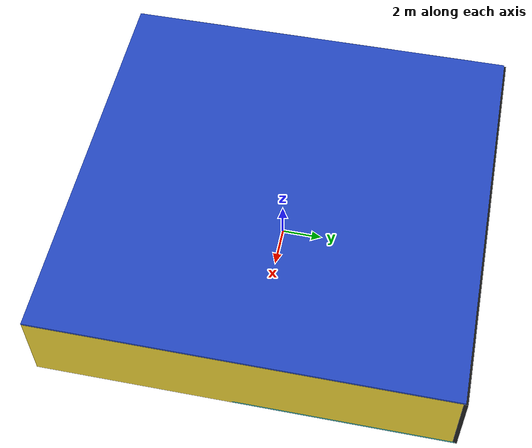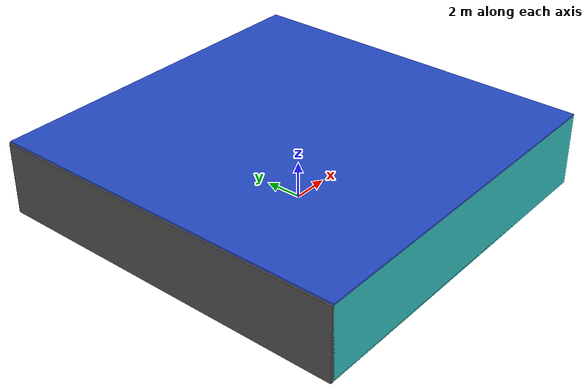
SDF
<sdf version="1.4">
 <world name="default">
  <physics type="ode">
   <max_step_size>0.001</max_step_size>
   <real_time_factor>1</real_time_factor>
   <real_time_update_rate>1000</real_time_update_rate>
   <gravity>0 0 -9.8</gravity>
  </physics>
  <scene><ambient>0.4 0.4 0.4 1</ambient><background>0.7 0.7 0.7 1</background><shadows>1</shadows></scene>
  <model name="Surrounding">
   <static>1</static>
   <link name="Ceiling">
    <collision name="Ceiling_Collision"><geometry><box><size>20 20 0.1</size></box></geometry></collision>
    <visual name="Ceiling_Visual">
     <geometry><box><size>20 20 0.1</size></box></geometry>
     <material>
      <script><uri>file://media/materials/scripts/gazebo.material</uri><name>Gazebo/BlueGlow</name></script>
     </material>
    </visual>
    <pose>0 0 4.05 0 0 0</pose>
   </link>
   <link name="Wall_South">
    <collision name="Wall_South_Collision">
     <geometry><box><size>20 0 4</size></box></geometry>
     <pose>0 0 2 0 -0 0</pose>
    </collision>
    <visual name="Wall_South_Visual">
     <pose>0 0 2 0 -0 0</pose>
     <geometry><box><size>20 0 4</size></box></geometry>
     <material>
      <script><uri>file://media/materials/scripts/gazebo.material</uri><name>Gazebo/Turquoise</name></script>
     </material>
    </visual>
    <velocity_decay><linear>0</linear><angular>0</angular></velocity_decay>
    <pose>0 -10 0 0 -0 0</pose>
   </link>
   <link name="Wall_East">
    <collision name="Wall_21_Collision">
     <geometry><box><size>20 0 4</size></box></geometry>
     <pose>0 0 2 0 -0 0</pose>
    </collision>
    <visual name="Wall_21_Visual">
     <pose>0 0 2 0 -0 0</pose>
     <geometry><box><size>20 0 4</size></box></geometry>
     <material>
      <script><uri>file://media/materials/scripts/gazebo.material</uri><name>Gazebo/ZincYellow</name></script>
     </material>
    </visual>
    <velocity_decay><linear>0</linear><angular>0</angular></velocity_decay>
    <pose>10 0 0 0 -0 1.5708</pose>
   </link>
   <link name="Wall_North">
    <collision name="Wall_22_Collision">
     <geometry><box><size>20 0.2 4</size></box></geometry>
     <pose>0 0 2 0 -0 0</pose>
    </collision>
    <visual name="Wall_22_Visual">
     <pose>0 0 2 0 -0 0</pose>
     <geometry><box><size>20 0.2 4</size></box></geometry>
     <material>
      <script><uri>file://media/materials/scripts/gazebo.material</uri><name>Gazebo/FlatBlack</name></script>
     </material>
    </visual>
    <velocity_decay><linear>0</linear><angular>0</angular></velocity_decay>
    <pose>0 10 0 0 -0 0</pose>
   </link>
   <link name="Wall_West">
    <collision name="Wall_23_Collision">
     <geometry><box><size>20 0.2 4</size></box></geometry>
     <pose>0 0 2 0 -0 0</pose>
    </collision>
    <visual name="Wall_23_Visual">
     <pose>0 0 2 0 -0 0</pose>
     <geometry><box><size>20 0.2 4</size></box></geometry>
     <material>
      <script><uri>file://media/materials/scripts/gazebo.material</uri><name>Gazebo/DarkGrey</name></script>
     </material>
    </visual>
    <velocity_decay><linear>0</linear><angular>0</angular></velocity_decay>
    <pose>-10 0 0 0 0 -1.5708</pose>
   </link>
   <link name="Ground_link">
    <collision name="collision">
     <pose>0 0 .05 0 -0 0</pose>
     <geometry><box><size>20 20 0.1</size></box></geometry>
    </collision>
    <visual name="visual">
     <pose>0 0 .05 0 -0 0</pose>
     <geometry><box><size>20 20 0.1</size></box></geometry>
     <material>
      <script><uri>file://media/materials/scripts/gazebo.material</uri><name>Gazebo/TurquoiseGlow</name></script>
     </material>
    </visual>
   </link>
   <static>1</static>
  </model>
  <spherical_coordinates>
   <surface_model>EARTH_WGS84</surface_model>
   <latitude_deg>0</latitude_deg>
   <longitude_deg>0</longitude_deg>
   <elevation>0</elevation>
   <heading_deg>0</heading_deg>
  </spherical_coordinates>
  <light name="lightball_0" type="diffuse">
   <diffuse>0.8 0.8 0.8 1</diffuse>
   <specular>0.2 0.2 0.2 1</specular>
   <attenuation>
    <range>100</range>
    <constant>0.7</constant>
    <linear>0.01</linear>
    <quadratic>0.001</quadratic>
   </attenuation>
   <direction>-0.5 0.1 -0.9</direction>
   <pose>-4.4948511608 -9.06677539473 2.1398369117 0 0 0</pose>
  </light>
  <light name="lightball_1" type="diffuse">
   <diffuse>0.8 0.8 0.8 1</diffuse>
   <specular>0.2 0.2 0.2 1</specular>
   <attenuation>
    <range>100</range>
    <constant>0.7</constant>
    <linear>0.01</linear>
    <quadratic>0.001</quadratic>
   </attenuation>
   <direction>-0.5 0.1 -0.9</direction>
   <pose>-8.34165817364 2.27229146884 1.62638748806 0 0 0</pose>
  </light>
  <light name="lightball_2" type="diffuse">
   <diffuse>0.8 0.8 0.8 1</diffuse>
   <specular>0.2 0.2 0.2 1</specular>
   <attenuation>
    <range>100</range>
    <constant>0.7</constant>
    <linear>0.01</linear>
    <quadratic>0.001</quadratic>
   </attenuation>
   <direction>-0.5 0.1 -0.9</direction>
   <pose>6.74984612196 6.73044222251 1.11040715936 0 0 0</pose>
  </light>
  <light name="lightball_3" type="diffuse">
   <diffuse>0.8 0.8 0.8 1</diffuse>
   <specular>0.2 0.2 0.2 1</specular>
   <attenuation>
    <range>100</range>
    <constant>0.7</constant>
    <linear>0.01</linear>
    <quadratic>0.001</quadratic>
   </attenuation>
   <direction>-0.5 0.1 -0.9</direction>
   <pose>3.61950033798 -2.78650529325 1.83065993731 0 0 0</pose>
  </light>
  <light name="lightball_4" type="diffuse">
   <diffuse>0.8 0.8 0.8 1</diffuse>
   <specular>0.2 0.2 0.2 1</specular>
   <attenuation>
    <range>100</range>
    <constant>0.7</constant>
    <linear>0.01</linear>
    <quadratic>0.001</quadratic>
   </attenuation>
   <direction>-0.5 0.1 -0.9</direction>
   <pose>8.14997700148 -8.93191159148 2.00349139466 0 0 0</pose>
  </light>
  <include>
   <uri>model://textured_shapes</uri>
   <pose>0.561831006639 -0.741522543024 0 0 0 1.89283258098</pose>
  </include>
  <include><uri>model://table</uri><pose>2.47067515973 2.11581629609 0 0 0 1.91139663603</pose></include>
  <include><uri>model://cabinet</uri><pose>4.81323501515 -6.35216842015 0 0 0 3.04545954853</pose></include>
  <include>
   <uri>model://textured_shapes</uri>
   <pose>3.35044761614 -2.52197062108 0 0 0 0.324571619871</pose>
  </include>
  <include><uri>model://cabinet</uri><pose>6.96083947992 0.771405499083 0 0 0 2.95348624556</pose></include>
 </world>
</sdf>

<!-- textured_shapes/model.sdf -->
<sdf version="1.6">
  <model name="textured_shapes">
    <pose>0 0 0.5 0 0 0</pose>
    <link name="box">
      <pose>0 -1.5 0 0 0 0</pose>
      <collision name="collision">
        <geometry>
          <box>
            <size>1 1 1</size>
          </box>
        </geometry>
      </collision>
      <visual name="visual">
        <geometry>
          <box>
            <size>1 1 1</size>
          </box>
        </geometry>
        <material>
          <script>
            <uri>model://../model_source/models/textured_shapes/materials/scripts</uri>
            <uri>model://../model_source/models/textured_shapes/materials/textures</uri>
            <name>TexturedShape/Squares</name>
          </script>
        </material>
      </visual>
    </link>
    <link name="sphere">
      <collision name="collision">
        <geometry>
          <sphere>
            <radius>0.5</radius>
          </sphere>
        </geometry>
      </collision>
      <visual name="visual">
        <geometry>
          <sphere>
            <radius>0.5</radius>
          </sphere>
        </geometry>
        <material>
          <script>
            <uri>model://../model_source/models/textured_shapes/materials/scripts</uri>
            <uri>model://../model_source/models/textured_shapes/materials/textures</uri>
            <name>TexturedShape/Squares</name>
          </script>
        </material>
      </visual>
    </link>
    <link name="cylinder">
      <pose>0 1.5 0 0 0 0</pose>
      <collision name="collision">
        <geometry>
          <cylinder>
            <radius>0.5</radius>
            <length>1</length>
          </cylinder>
        </geometry>
      </collision>
      <visual name="visual">
        <geometry>
          <cylinder>
            <radius>0.5</radius>
            <length>1</length>
          </cylinder>
        </geometry>
        <material>
          <script>
            <uri>model://../model_source/models/textured_shapes/materials/scripts</uri>
            <uri>model://../model_source/models/textured_shapes/materials/textures</uri>
            <name>TexturedShape/Squares</name>
          </script>
        </material>
      </visual>
    </link>
  </model>
</sdf>

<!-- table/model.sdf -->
<sdf version="1.5">
  <model name="table">
    <static>true</static>
    <link name="link">
      <collision name="surface">
        <pose>0 0 1.0 0 0 0</pose>
        <geometry>
          <box>
            <size>1.5 0.8 0.03</size>
          </box>
        </geometry>
        <surface>
          <friction>
            <ode>
              <mu>0.6</mu>
              <mu2>0.6</mu2>
            </ode>
          </friction>
        </surface>
      </collision>
      <visual name="visual1">
        <pose>0 0 1.0 0 0 0</pose>
        <geometry>
          <box>
            <size>1.5 0.8 0.03</size>
          </box>
        </geometry>
        <material>
          <script>
            <uri>model://media/materials/scripts/gazebo.material</uri>
            <name>Gazebo/Wood</name>
          </script>
        </material>
      </visual>
      <collision name="front_left_leg">
        <pose>0.68 0.38 0.5 0 0 0</pose>
        <geometry>
          <cylinder>
            <radius>0.02</radius>
            <length>1.0</length>
          </cylinder>
        </geometry>
      </collision>
      <visual name="front_left_leg">
        <pose>0.68 0.38 0.5 0 0 0</pose>
        <geometry>
          <cylinder>
            <radius>0.02</radius>
            <length>1.0</length>
          </cylinder>
        </geometry>
        <material>
          <script>
            <uri>model://media/materials/scripts/gazebo.material</uri>
            <name>Gazebo/Grey</name>
          </script>
        </material>
      </visual>
      <collision name="front_right_leg">
        <pose>0.68 -0.38 0.5 0 0 0</pose>
        <geometry>
          <cylinder>
            <radius>0.02</radius>
            <length>1.0</length>
          </cylinder>
        </geometry>
      </collision>
      <visual name="front_right_leg">
        <pose>0.68 -0.38 0.5 0 0 0</pose>
        <geometry>
          <cylinder>
            <radius>0.02</radius>
            <length>1.0</length>
          </cylinder>
        </geometry>
        <material>
          <script>
            <uri>model://media/materials/scripts/gazebo.material</uri>
            <name>Gazebo/Grey</name>
          </script>
        </material>
      </visual>
      <collision name="back_right_leg">
        <pose>-0.68 -0.38 0.5 0 0 0</pose>
        <geometry>
          <cylinder>
            <radius>0.02</radius>
            <length>1.0</length>
          </cylinder>
        </geometry>
      </collision>
      <visual name="back_right_leg">
        <pose>-0.68 -0.38 0.5 0 0 0</pose>
        <geometry>
          <cylinder>
            <radius>0.02</radius>
            <length>1.0</length>
          </cylinder>
        </geometry>
        <material>
          <script>
            <uri>model://media/materials/scripts/gazebo.material</uri>
            <name>Gazebo/Grey</name>
          </script>
        </material>
      </visual>
      <collision name="back_left_leg">
        <pose>-0.68 0.38 0.5 0 0 0</pose>
        <geometry>
          <cylinder>
            <radius>0.02</radius>
            <length>1.0</length>
          </cylinder>
        </geometry>
      </collision>
      <visual name="back_left_leg">
        <pose>-0.68 0.38 0.5 0 0 0</pose>
        <geometry>
          <cylinder>
            <radius>0.02</radius>
            <length>1.0</length>
          </cylinder>
        </geometry>
        <material>
          <script>
            <uri>model://media/materials/scripts/gazebo.material</uri>
            <name>Gazebo/Grey</name>
          </script>
        </material>
      </visual>
    </link>
  </model>
</sdf>

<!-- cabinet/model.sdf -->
<sdf version="1.5">
  <model name="cabinet">
    <static>true</static>
    <link name="cabinet_bottom_plate">
      <inertial>
        <pose>0 0 -1 0 0 0</pose>
        <inertia>
          <ixx>2.050000</ixx>
          <ixy>0</ixy>
          <ixz>0</ixz>
          <iyy>2.050000</iyy>
          <iyz>0</iyz>
          <izz>2.050000</izz>
        </inertia>
        <mass>25.000000</mass>
      </inertial>
      <collision name="cabinet_bottom_plate_geom">
        <pose>0 0 0.010000 0 0 0</pose>
        <geometry>
          <box>
            <size>0.450000 0.450000 0.020000</size>
          </box>
        </geometry>
      </collision>
      <visual name="cabinet_bottom_plate_geom_visual">
        <pose>0 0 0.010000 0 0 0</pose>
        <geometry>
          <box>
            <size>0.450000 0.450000 0.020000</size>
          </box>
        </geometry>
        <material>
          <script>
            <uri>model://media/materials/scripts/gazebo.material</uri>
            <name>Gazebo/Wood</name>
          </script>
        </material>
      </visual>
      <collision name="cabinet_bottom_plate_geom_cabinet_back_plate">
        <pose>0.235000 0 0.510000 0 0 0</pose>
        <geometry>
          <box>
            <size>0.020000 0.450000 1.020000</size>
          </box>
        </geometry>
      </collision>
      <visual name="cabinet_bottom_plate_geom_cabinet_back_plate_visual">
        <pose>0.235000 0 0.510000 0 0 0</pose>
        <geometry>
          <box>
            <size>0.020000 0.450000 1.020000</size>
          </box>
        </geometry>
        <material>
          <script>
            <uri>model://media/materials/scripts/gazebo.material</uri>
            <name>Gazebo/Wood</name>
          </script>
        </material>
      </visual>
      <collision name="cabinet_bottom_plate_geom_cabinet_left_plate">
        <pose>0 0.235000 0.510000 0 0 0</pose>
        <geometry>
          <box>
            <size>0.450000 0.020000 1.020000</size>
          </box>
        </geometry>
      </collision>
      <visual name="cabinet_bottom_plate_geom_cabinet_left_plate_visual">
        <pose>0 0.235000 0.510000 0 0 0</pose>
        <geometry>
          <box>
            <size>0.450000 0.020000 1.020000</size>
          </box>
        </geometry>
        <material>
          <script>
            <uri>model://media/materials/scripts/gazebo.material</uri>
            <name>Gazebo/Wood</name>
          </script>
        </material>
      </visual>
      <collision name="cabinet_bottom_plate_geom_cabinet_middle_plate">
        <pose>0 0 0.510000 0 0 0</pose>
        <geometry>
          <box>
            <size>0.450000 0.450000 0.020000</size>
          </box>
        </geometry>
      </collision>
      <visual name="cabinet_bottom_plate_geom_cabinet_middle_plate_visual">
        <pose>0 0 0.510000 0 0 0</pose>
        <geometry>
          <box>
            <size>0.450000 0.450000 0.020000</size>
          </box>
        </geometry>
        <material>
          <script>
            <uri>model://media/materials/scripts/gazebo.material</uri>
            <name>Gazebo/Wood</name>
          </script>
        </material>
      </visual>
      <collision name="cabinet_bottom_plate_geom_cabinet_right_plate">
        <pose>0 -0.235000 0.510000 0 0 0</pose>
        <geometry>
          <box>
            <size>0.450000 0.020000 1.020000</size>
          </box>
        </geometry>
      </collision>
      <visual name="cabinet_bottom_plate_geom_cabinet_right_plate_visual">
        <pose>0 -0.235000 0.510000 0 0 0</pose>
        <geometry>
          <box>
            <size>0.450000 0.020000 1.020000</size>
          </box>
        </geometry>
        <material>
          <script>
            <uri>model://media/materials/scripts/gazebo.material</uri>
            <name>Gazebo/Wood</name>
          </script>
        </material>
      </visual>
      <collision name="cabinet_bottom_plate_geom_cabinet_top_plate">
        <pose>0 0 1.010000 0 0 0</pose>
        <geometry>
          <box>
            <size>0.450000 0.450000 0.020000</size>
          </box>
        </geometry>
      </collision>
      <visual name="cabinet_bottom_plate_geom_cabinet_top_plate_visual">
        <pose>0 0 1.010000 0 0 0</pose>
        <geometry>
          <box>
            <size>0.450000 0.450000 0.020000</size>
          </box>
        </geometry>
        <material>
          <script>
            <uri>model://media/materials/scripts/gazebo.material</uri>
            <name>Gazebo/Wood</name>
          </script>
        </material>
      </visual>
    </link>
  </model>
</sdf>
